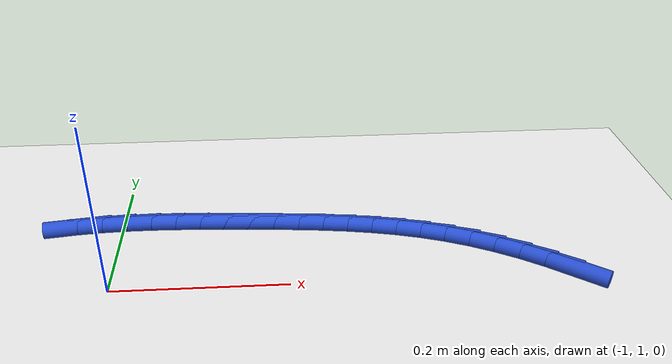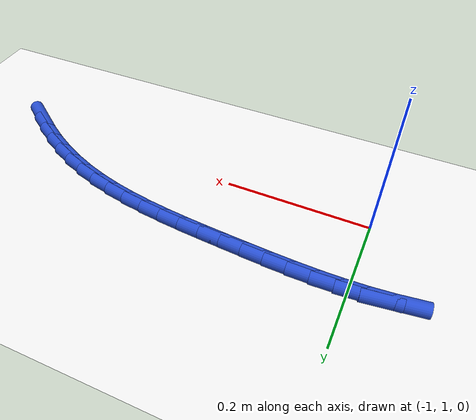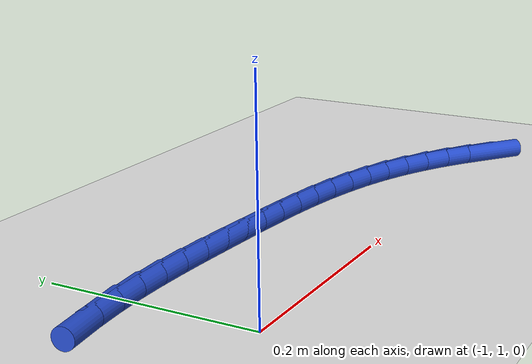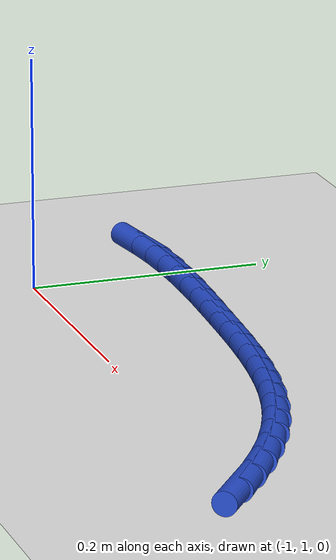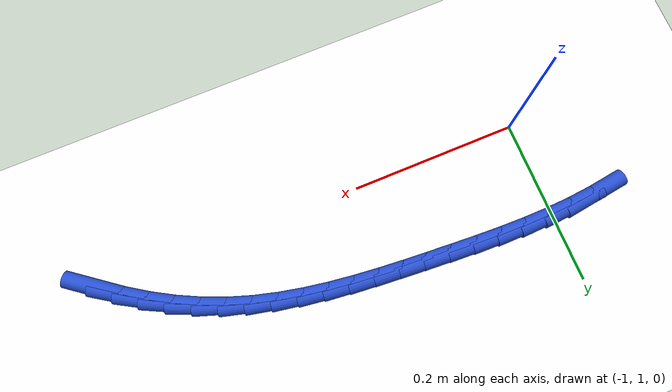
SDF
<sdf version="1.6">
 <world name="default">
  <model name="ground_plane">
   <static>1</static>
   <link name="link">
    <collision name="collision">
     <geometry><plane><normal>0 0 1</normal><size>100 100</size></plane></geometry>
     <surface><friction><ode><mu>100</mu><mu2>50</mu2></ode></friction></surface>
    </collision>
    <visual name="visual">
     <cast_shadows>0</cast_shadows>
     <geometry><plane><normal>0 0 1</normal><size>100 100</size></plane></geometry>
     <material>
      <script><uri>file://media/materials/scripts/gazebo.material</uri><name>Gazebo/WhiteGlow</name></script>
     </material>
    </visual>
   </link>
  </model>
  <model name="line">
   <link name="link_38">
    <pose>-0.4825712259194319 0.9964460716608758 0.01 0 1.57 -0.6517061310487865</pose>
    <collision name="collision">
     <geometry><cylinder><radius>0.01</radius><length>0.08</length></cylinder></geometry>
    </collision>
    <visual name="visual">
     <material>
      <script><name>Gazebo/Blue</name><uri>file://media/materials/scripts/gazebo.material</uri></script>
     </material>
     <geometry><cylinder><radius>0.01</radius><length>0.08</length></cylinder></geometry>
    </visual>
   </link>
   <link name="link_39">
    <pose>-0.5066674763120652 1.0148291015788733 0.01 0 1.57 -0.5909271183176295</pose>
    <collision name="collision">
     <geometry><cylinder><radius>0.01</radius><length>0.08</length></cylinder></geometry>
    </collision>
    <visual name="visual">
     <material>
      <script><name>Gazebo/Blue</name><uri>file://media/materials/scripts/gazebo.material</uri></script>
     </material>
     <geometry><cylinder><radius>0.01</radius><length>0.08</length></cylinder></geometry>
    </visual>
   </link>
   <link name="link_40">
    <pose>-0.5317497028572966 1.0316567480541274 0.01 0 1.57 -0.528444999137504</pose>
    <collision name="collision">
     <geometry><cylinder><radius>0.01</radius><length>0.08</length></cylinder></geometry>
    </collision>
    <visual name="visual">
     <material>
      <script><name>Gazebo/Blue</name><uri>file://media/materials/scripts/gazebo.material</uri></script>
     </material>
     <geometry><cylinder><radius>0.01</radius><length>0.08</length></cylinder></geometry>
    </visual>
   </link>
   <link name="link_41">
    <pose>-0.5577125241369915 1.0468146241207859 0.01 0 1.57 -0.46378826447084043</pose>
    <collision name="collision">
     <geometry><cylinder><radius>0.01</radius><length>0.08</length></cylinder></geometry>
    </collision>
    <visual name="visual">
     <material>
      <script><name>Gazebo/Blue</name><uri>file://media/materials/scripts/gazebo.material</uri></script>
     </material>
     <geometry><cylinder><radius>0.01</radius><length>0.08</length></cylinder></geometry>
    </visual>
   </link>
   <link name="link_42">
    <pose>-0.5844505587330143 1.0601883428129966 0.01 0 1.57 -0.3965112653725849</pose>
    <collision name="collision">
     <geometry><cylinder><radius>0.01</radius><length>0.08</length></cylinder></geometry>
    </collision>
    <visual name="visual">
     <material>
      <script><name>Gazebo/Blue</name><uri>file://media/materials/scripts/gazebo.material</uri></script>
     </material>
     <geometry><cylinder><radius>0.01</radius><length>0.08</length></cylinder></geometry>
    </visual>
   </link>
   <link name="link_43">
    <pose>-0.6118584381919879 1.0716636628633203 0.01 0 1.57 -0.32879017214554823</pose>
    <collision name="collision">
     <geometry><cylinder><radius>0.01</radius><length>0.08</length></cylinder></geometry>
    </collision>
    <visual name="visual">
     <material>
      <script><name>Gazebo/Blue</name><uri>file://media/materials/scripts/gazebo.material</uri></script>
     </material>
     <geometry><cylinder><radius>0.01</radius><length>0.08</length></cylinder></geometry>
    </visual>
   </link>
   <link name="link_44">
    <pose>-0.6398382045268702 1.081209622093059 0.01 0 1.57 -0.267644319476524</pose>
    <collision name="collision">
     <geometry><cylinder><radius>0.01</radius><length>0.08</length></cylinder></geometry>
    </collision>
    <visual name="visual">
     <material>
      <script><name>Gazebo/Blue</name><uri>file://media/materials/scripts/gazebo.material</uri></script>
     </material>
     <geometry><cylinder><radius>0.01</radius><length>0.08</length></cylinder></geometry>
    </visual>
   </link>
   <link name="link_45">
    <pose>-0.6683116958283967 1.0890177273616286 0.01 0 1.57 -0.21464124068219143</pose>
    <collision name="collision">
     <geometry><cylinder><radius>0.01</radius><length>0.08</length></cylinder></geometry>
    </collision>
    <visual name="visual">
     <material>
      <script><name>Gazebo/Blue</name><uri>file://media/materials/scripts/gazebo.material</uri></script>
     </material>
     <geometry><cylinder><radius>0.01</radius><length>0.08</length></cylinder></geometry>
    </visual>
   </link>
   <link name="link_46">
    <pose>-0.6972040203780528 1.095316236050397 0.01 0 1.57 -0.16995232038957006</pose>
    <collision name="collision">
     <geometry><cylinder><radius>0.01</radius><length>0.08</length></cylinder></geometry>
    </collision>
    <visual name="visual">
     <material>
      <script><name>Gazebo/Blue</name><uri>file://media/materials/scripts/gazebo.material</uri></script>
     </material>
     <geometry><cylinder><radius>0.01</radius><length>0.08</length></cylinder></geometry>
    </visual>
   </link>
   <link name="link_47">
    <pose>-0.7264402864573243 1.100333405540731 0.01 0 1.57 -0.13355192131139942</pose>
    <collision name="collision">
     <geometry><cylinder><radius>0.01</radius><length>0.08</length></cylinder></geometry>
    </collision>
    <visual name="visual">
     <material>
      <script><name>Gazebo/Blue</name><uri>file://media/materials/scripts/gazebo.material</uri></script>
     </material>
     <geometry><cylinder><radius>0.01</radius><length>0.08</length></cylinder></geometry>
    </visual>
   </link>
   <link name="link_48">
    <pose>-0.7559456023476968 1.104297493213998 0.01 0 1.57 -0.10530993409976899</pose>
    <collision name="collision">
     <geometry><cylinder><radius>0.01</radius><length>0.08</length></cylinder></geometry>
    </collision>
    <visual name="visual">
     <material>
      <script><name>Gazebo/Blue</name><uri>file://media/materials/scripts/gazebo.material</uri></script>
     </material>
     <geometry><cylinder><radius>0.01</radius><length>0.08</length></cylinder></geometry>
    </visual>
   </link>
   <link name="link_49">
    <pose>-0.7856450763306565 1.1074367564515655 0.01 0 1.57 -0.08506596935890784</pose>
    <collision name="collision">
     <geometry><cylinder><radius>0.01</radius><length>0.08</length></cylinder></geometry>
    </collision>
    <visual name="visual">
     <material>
      <script><name>Gazebo/Blue</name><uri>file://media/materials/scripts/gazebo.material</uri></script>
     </material>
     <geometry><cylinder><radius>0.01</radius><length>0.08</length></cylinder></geometry>
    </visual>
   </link>
   <link name="link_50">
    <pose>-0.8154638166876889 1.1099794526348008 0.01 0 1.57 -0.07268351419006149</pose>
    <collision name="collision">
     <geometry><cylinder><radius>0.01</radius><length>0.08</length></cylinder></geometry>
    </collision>
    <visual name="visual">
     <material>
      <script><name>Gazebo/Blue</name><uri>file://media/materials/scripts/gazebo.material</uri></script>
     </material>
     <geometry><cylinder><radius>0.01</radius><length>0.08</length></cylinder></geometry>
    </visual>
   </link>
   <link name="link_51">
    <pose>-0.8453269317002794 1.1121538391450712 0.01 0 1.57 -0.0675079938536414</pose>
    <collision name="collision">
     <geometry><cylinder><radius>0.01</radius><length>0.08</length></cylinder></geometry>
    </collision>
    <visual name="visual">
     <material>
      <script><name>Gazebo/Blue</name><uri>file://media/materials/scripts/gazebo.material</uri></script>
     </material>
     <geometry><cylinder><radius>0.01</radius><length>0.08</length></cylinder></geometry>
    </visual>
   </link>
   <link name="link_52">
    <pose>-0.875162102999599 1.114171016951641 0.01 0 1.57 -0.061119635248923984</pose>
    <collision name="collision">
     <geometry><cylinder><radius>0.01</radius><length>0.08</length></cylinder></geometry>
    </collision>
    <visual name="visual">
     <material>
      <script><name>Gazebo/Blue</name><uri>file://media/materials/scripts/gazebo.material</uri></script>
     </material>
     <geometry><cylinder><radius>0.01</radius><length>0.08</length></cylinder></geometry>
    </visual>
   </link>
   <link name="link_53">
    <pose>-0.9049343801041758 1.1159929569196063 0.01 0 1.57 -0.047122426127282645</pose>
    <collision name="collision">
     <geometry><cylinder><radius>0.01</radius><length>0.08</length></cylinder></geometry>
    </collision>
    <visual name="visual">
     <material>
      <script><name>Gazebo/Blue</name><uri>file://media/materials/scripts/gazebo.material</uri></script>
     </material>
     <geometry><cylinder><radius>0.01</radius><length>0.08</length></cylinder></geometry>
    </visual>
   </link>
   <link name="link_54">
    <pose>-0.9346370077346836 1.1173936537092533 0.01 0 1.57 -0.025269866625905996</pose>
    <collision name="collision">
     <geometry><cylinder><radius>0.01</radius><length>0.08</length></cylinder></geometry>
    </collision>
    <visual name="visual">
     <material>
      <script><name>Gazebo/Blue</name><uri>file://media/materials/scripts/gazebo.material</uri></script>
     </material>
     <geometry><cylinder><radius>0.01</radius><length>0.08</length></cylinder></geometry>
    </visual>
   </link>
   <link name="link_55">
    <pose>-0.964263923680349 1.118142481322514 0.01 0 1.57 0.004524149824682729</pose>
    <collision name="collision">
     <geometry><cylinder><radius>0.01</radius><length>0.08</length></cylinder></geometry>
    </collision>
    <visual name="visual">
     <material>
      <script><name>Gazebo/Blue</name><uri>file://media/materials/scripts/gazebo.material</uri></script>
     </material>
     <geometry><cylinder><radius>0.01</radius><length>0.08</length></cylinder></geometry>
    </visual>
   </link>
   <link name="link_56">
    <pose>-0.9938090657303992 1.1180088137613207 0.01 0 1.57 0.042300033275450295</pose>
    <collision name="collision">
     <geometry><cylinder><radius>0.01</radius><length>0.08</length></cylinder></geometry>
    </collision>
    <visual name="visual">
     <material>
      <script><name>Gazebo/Blue</name><uri>file://media/materials/scripts/gazebo.material</uri></script>
     </material>
     <geometry><cylinder><radius>0.01</radius><length>0.08</length></cylinder></geometry>
    </visual>
   </link>
   <link name="link_57">
    <pose>-1.023266371674061 1.1167620250276051 0.01 0 1.57 0.08789325479259164</pose>
    <collision name="collision">
     <geometry><cylinder><radius>0.01</radius><length>0.08</length></cylinder></geometry>
    </collision>
    <visual name="visual">
     <material>
      <script><name>Gazebo/Blue</name><uri>file://media/materials/scripts/gazebo.material</uri></script>
     </material>
     <geometry><cylinder><radius>0.01</radius><length>0.08</length></cylinder></geometry>
    </visual>
   </link>
   <link name="link_58">
    <pose>-1.0526299182384042 1.1141745008455288 0.01 0 1.57 0.13507528991438397</pose>
    <collision name="collision">
     <geometry><cylinder><radius>0.01</radius><length>0.08</length></cylinder></geometry>
    </collision>
    <visual name="visual">
     <material>
      <script><name>Gazebo/Blue</name><uri>file://media/materials/scripts/gazebo.material</uri></script>
     </material>
     <geometry><cylinder><radius>0.01</radius><length>0.08</length></cylinder></geometry>
    </visual>
   </link>
  </model>
 </world>
</sdf>
